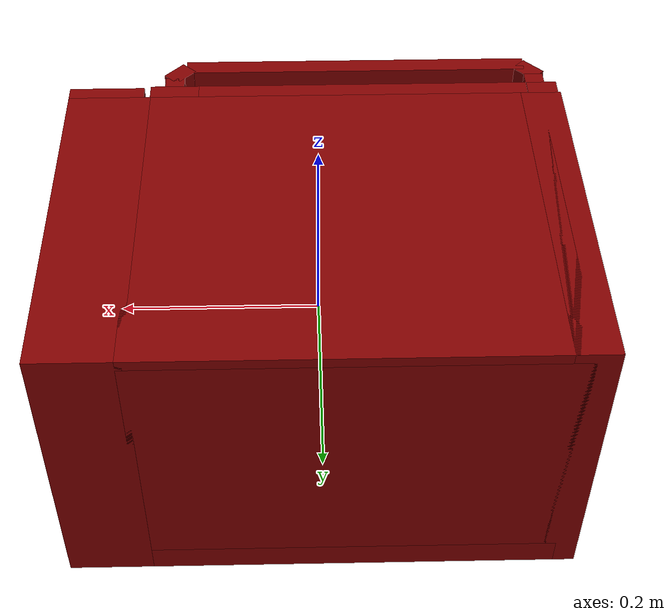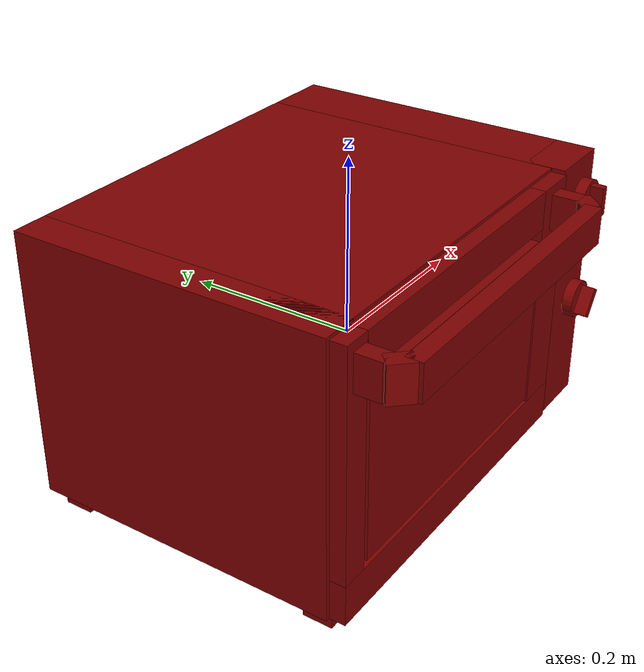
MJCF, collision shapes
<?xml version='1.0' encoding='UTF-8'?>
<mujoco model="model">
  <option timestep="0.002" gravity="0.0 0.0 -9.81"/>
  <compiler angle="radian"/>
  <asset>
    <mesh file="visuals/door.obj" name="door_vis"/>
    <mesh file="visuals/knob_temp.obj" name="knob_temp_vis"/>
    <mesh file="visuals/knob_time.obj" name="knob_time_vis"/>
    <mesh file="visuals/rack0.obj" name="rack0_vis"/>
    <mesh file="visuals/Body001.obj" name="Body001_vis"/>
    <mesh file="visuals/window.obj" name="window_vis"/>
    <texture file="visuals/T_BC001.png" name="Body001_material" type="2d"/>
    <material name="Body001_material" rgba="1 1 1 1.0" texture="Body001_material" shininess="0.1" specular="2"/>
    <texture file="visuals/T_BC001.png" name="door_material" type="2d"/>
    <material name="door_material" rgba="1 1 1 1.0" texture="door_material" shininess="0.1" specular="2"/>
    <texture file="visuals/T_BC001.png" name="window_material" type="2d"/>
    <material name="window_material" rgba="1 1 1 0.800000011920929" texture="window_material" shininess="0.5" specular="0.3103448502657381"/>
    <texture file="visuals/T_BC001.png" name="knob_temp_material" type="2d"/>
    <material name="knob_temp_material" rgba="1 1 1 1.0" texture="knob_temp_material" shininess="0.1" specular="2"/>
    <texture file="visuals/T_BC001.png" name="knob_time_material" type="2d"/>
    <material name="knob_time_material" rgba="1 1 1 1.0" texture="knob_time_material" shininess="0.1" specular="2"/>
    <texture file="visuals/T_BC001.png" name="rack0_material" type="2d"/>
    <material name="rack0_material" rgba="1 1 1 1.0" texture="rack0_material" shininess="0.1" specular="2"/>
  </asset>
  <default>
    <default class="visual">
      <geom conaffinity="0" contype="0" group="1" type="mesh"/>
    </default>
    <default class="collision">
      <geom group="0" rgba="0.5 0 0 0.5"/>
    </default>
    <default class="spawn">
      <geom group="0" rgba="1 1 1 0.5" contype="0" conaffinity="0"/>
      <site group="0" rgba="1 1 1 0.5"/>
    </default>
    <default class="region">
      <geom group="1" conaffinity="0" contype="0" rgba="0 1 0 0"/>
    </default>
  </default>
  <worldbody>
    <body>
      <body name="object">
        <geom mesh="Body001_vis" type="mesh" solimp="0.998 0.998 0.001" solref="0.001 1" friction="0.95 0.3 0.1" class="visual" material="Body001_material"/>
        <geom class="collision" type="box" pos="-0.22861456871032715 0.0364430695772171 0.008217589929699898" size="0.02043006755411625 0.17825669050216675 0.15256460011005402" quat="1.0 0.0 0.0 0.0"/>
        <geom class="collision" type="box" pos="-0.0274511631578207 0.0364430695772171 0.14791572093963623" size="0.20042893290519714 0.17825669050216675 0.012866469100117683" quat="1.0 0.0 0.0 0.0"/>
        <geom class="collision" type="box" pos="0.2081027328968048 0.0364430695772171 0.008217589929699898" size="0.041196588426828384 0.17825669050216675 0.15256460011005402" quat="1.0 0.0 0.0 0.0"/>
        <geom class="collision" type="box" pos="-0.0274511631578207 0.2123701572418213 0.0029867186676710844" size="0.20042893290519714 0.0023296053986996412 0.14734698832035065" quat="1.0 0.0 0.0 0.0"/>
        <geom class="collision" type="box" pos="-0.0274511631578207 0.0364430695772171 -0.12996456027030945" size="0.20042893290519714 0.17825669050216675 0.014416897669434547" quat="1.0 0.0 0.0 0.0"/>
        <geom class="collision" type="box" pos="0.2116076499223709 -0.13461552560329437 0.008217589929699898" size="0.037691663950681686 0.0223397109657526 0.15256460011005402" quat="1.0 0.0 0.0 0.0"/>
        <geom class="collision" type="box" pos="-0.21846584975719452 -0.124966099858284 -0.1524275541305542" size="0.02111775614321232 0.016600724309682846 0.008645528927445412" quat="1.0 0.0 0.0 0.0"/>
        <geom class="collision" type="box" pos="-0.21846584975719452 0.18319742381572723 -0.1524275541305542" size="0.02111775614321232 0.016600724309682846 0.008645528927445412" quat="1.0 0.0 0.0 0.0"/>
        <geom class="collision" type="box" pos="0.21876192092895508 0.18319742381572723 -0.1524275541305542" size="0.02111775614321232 0.016600724309682846 0.008645528927445412" quat="1.0 0.0 0.0 0.0"/>
        <geom class="collision" type="box" pos="0.21876192092895508 -0.124966099858284 -0.1524275541305542" size="0.02111775614321232 0.016600724309682846 0.008645528927445412" quat="1.0 0.0 0.0 0.0"/>
        <body name="door">
          <joint axis="1.0 0.0 0.0" pos="-0.0409649983048439 -0.15336599946022034 -0.1344502568244934" limited="true" name="door_joint" range="0.0 1.4207963267948966" type="hinge" damping="1" frictionloss="1" armature=".01" stiffness="0.5" springref="-0.5"/>
          <geom mesh="door_vis" type="mesh" solimp="0.998 0.998 0.001" solref="0.001 1" friction="0.95 0.3 0.1" class="visual" material="door_material"/>
          <geom class="collision" type="box" pos="-0.03902696445584297 -0.1525685042142868 -0.11814207583665848" size="0.2080969512462616 0.008923312649130821 0.023004984483122826" quat="1.0 0.0 0.0 0.0"/>
          <geom class="collision" type="box" pos="-0.04308534413576126 -0.20773036777973175 0.1291651427745819" size="0.17724664509296417 0.009287729859352112 0.01990107260644436" quat="1.0 0.0 0.0 0.0" name="door_handle_main"/>
          <geom class="collision" type="box" pos="-0.2286214828491211 -0.1749492883682251 0.1291651427745819" size="0.009726445190608501 0.014626610092818737 0.01990107260644436" quat="1.0 0.0 0.0 0.0"/>
          <geom class="collision" type="box" pos="-0.2240149974822998 -0.19719387590885162 0.1291651427745819" size="0.013549924828112125 0.009397410787642002 0.01990107260644436" quat="0.39482221007347107 0.0 0.0 0.9187575578689575"/>
          <geom class="collision" type="box" pos="0.140540212392807 -0.19719387590885162 0.1291651427745819" size="0.013549924828112125 0.009397410787642002 0.01990107260644436" quat="0.3948223292827606 0.0 -0.0 -0.9187574982643127"/>
          <geom class="collision" type="box" pos="0.1451467126607895 -0.1749492883682251 0.1291651427745819" size="0.009726445190608501 0.014626610092818737 0.01990107260644436" quat="1.0 0.0 0.0 0.0"/>
          <geom class="collision" type="box" pos="-0.23179517686367035 -0.1525685042142868 0.03168988600373268" size="0.015321298502385616 0.008923312649130821 0.1274433434009552" quat="1.0 0.0 0.0 0.0"/>
          <geom class="collision" type="box" pos="0.14299282431602478 -0.1525685042142868 0.03168988600373268" size="0.024840787053108215 0.008923312649130821 0.12744319438934326" quat="1.0 0.0 0.0 0.0"/>
          <geom class="collision" type="box" pos="-0.04870643839240074 -0.1525685042142868 0.13769356906414032" size="0.16738669574260712 0.008923312649130821 0.021454429253935814" quat="1.0 0.0 0.0 0.0" name="door_main"/>
          <body name="window">
            <geom mesh="window_vis" type="mesh" solimp="0.998 0.998 0.001" solref="0.001 1" friction="0.95 0.3 0.1" class="visual" material="window_material"/>
            <geom class="collision" type="box" pos="-0.04870643839240074 -0.1525685042142868 0.007696665823459625" size="0.16276876628398895 0.008923320099711418 0.09661351889371872" quat="1.0 0.0 0.0 0.0"/>
          </body>
        </body>
        <body name="knob_temp">
          <joint axis="0.0 1.0 0.0" pos="0.2125919908285141 -0.17528660595417023 0.11925400048494339" limited="true" name="knob_temp_joint" range="0.0 4.537856055185257" type="hinge" damping="0.05" armature="1" frictionloss="0.75"/>
          <geom mesh="knob_temp_vis" type="mesh" solimp="0.998 0.998 0.001" solref="0.001 1" friction="0.95 0.3 0.1" class="visual" material="knob_temp_material"/>
          <geom class="collision" type="cylinder" pos="0.2125919908285141 -0.1672479212284088 0.11904199421405792" size="0.021145638078451157 0.006035293452441692" quat="0.7071067094802856 0.7071068286895752 0.0 0.0" friction="100 0.5 0.01"/>
          <geom class="collision" type="box" pos="0.21254302561283112 -0.18054983019828796 0.11913607269525528" size="0.004773907829076052 0.007542760111391544 0.016425050795078278" quat="1.0 0.0 0.0 0.0" name="knob_temp_main" friction="100 0.5 0.01"/>
        </body>
        <body name="knob_time">
          <joint axis="0.0 1.0 0.0" pos="0.2119700014591217 -0.17528660595417023 -0.004299983847886324" limited="true" name="knob_time_joint" range="0.0 4.537856055185257" type="hinge" damping="0.05" frictionloss="0.75" armature="1"/>
          <geom mesh="knob_time_vis" type="mesh" solimp="0.998 0.998 0.001" solref="0.001 1" friction="0.95 0.3 0.1" class="visual" material="knob_time_material"/>
          <geom class="collision" type="cylinder" pos="0.2125919908285141 -0.1672479212284088 -0.00438313651829958" size="0.021145638078451157 0.006035293452441692" quat="0.7071067094802856 0.7071068286895752 0.0 0.0" friction="100 0.5 0.01"/>
          <geom class="collision" type="box" pos="0.21165409684181213 -0.18054983019828796 -0.004785634111613035" size="0.004773907829076052 0.007542760111391544 0.016425050795078278" quat="0.2957531213760376 -0.0 -0.9552643895149231 -0.0" name="knob_time_main" friction="100 0.5 0.01"/>
        </body>
        <body name="rack0">
          <geom class="region" name="reg_rack0" type="box" pos="-0.02336297184228897 0.02007852867245674 0.07115521095693111" size="0.17754293030500412 0.08577133885025978 0.05922415091097355"/>
          <joint axis="0.0 -1.0 0.0" pos="-0.022622503340244293 0.020098000764846802 0.002173993969336152" limited="true" name="rack0_joint" range="0.0 0.2" type="slide" damping="1" frictionloss="1" armature=".01" stiffness="0.05"/>
          <geom mesh="rack0_vis" type="mesh" solimp="0.998 0.998 0.001" solref="0.001 1" friction="0.95 0.3 0.1" class="visual" material="rack0_material"/>
          <geom class="collision" type="box" pos="-0.022913159802556038 0.019166043028235435 0.002278655068948865" size="0.1814659833908081 0.09153532236814499 0.004617560654878616" quat="1.0 0.0 0.0 0.0"/>
        </body>
        <geom class="region" name="reg_int" type="box" pos="-0.019486553966999054 0.03428103029727936 0.010025862604379654" size="0.18141934818029404 0.1713701764345169 0.12035349926352501"/>
        <geom class="region" name="reg_main" type="box" pos="-7.450580596923828e-09 0.026634005829691887 -5.014140924686217e-07" size="0.25201199746131897 0.1909999976158142 0.16350449419021607"/>
      </body>
    </body>
  </worldbody>
  <actuator>
    <motor name="door_joint_actuator" joint="door_joint" gear="50"/>
    <motor name="knob_temp_joint_actuator" joint="knob_temp_joint" gear="50"/>
    <motor name="knob_time_joint_actuator" joint="knob_time_joint" gear="50"/>
    <motor name="rack0_joint_actuator" joint="rack0_joint" gear="50"/>
  </actuator>
</mujoco>
